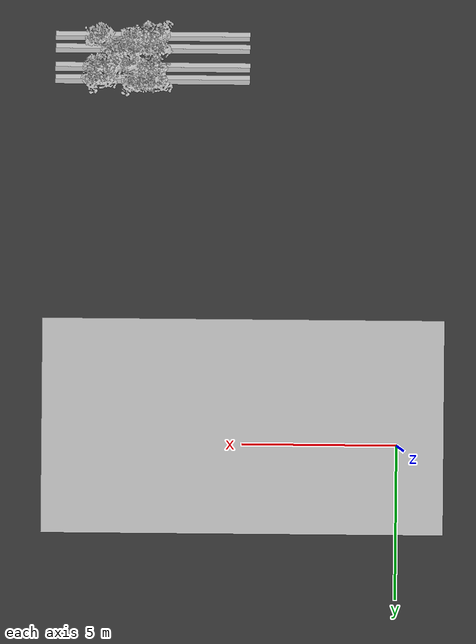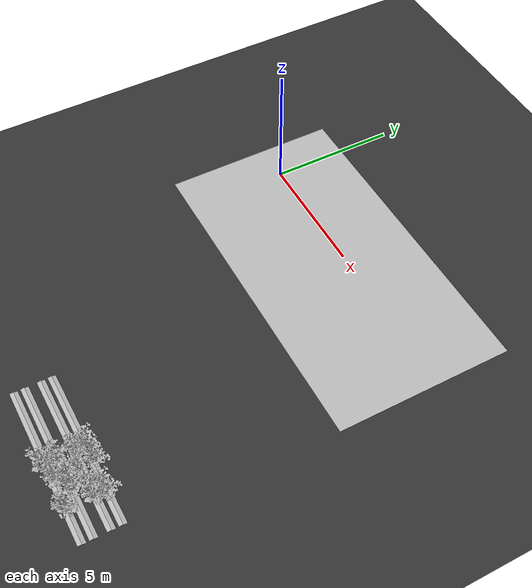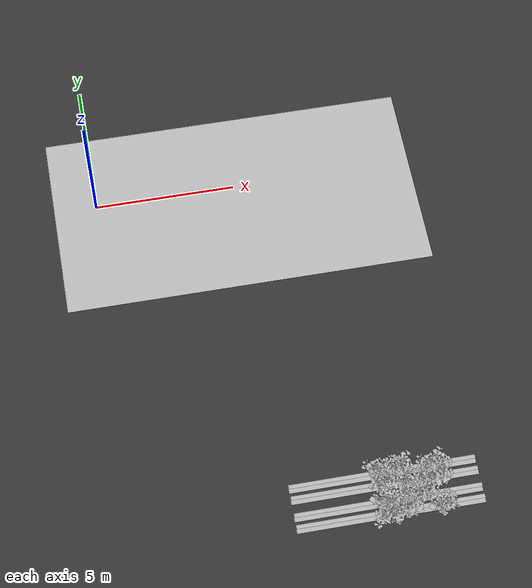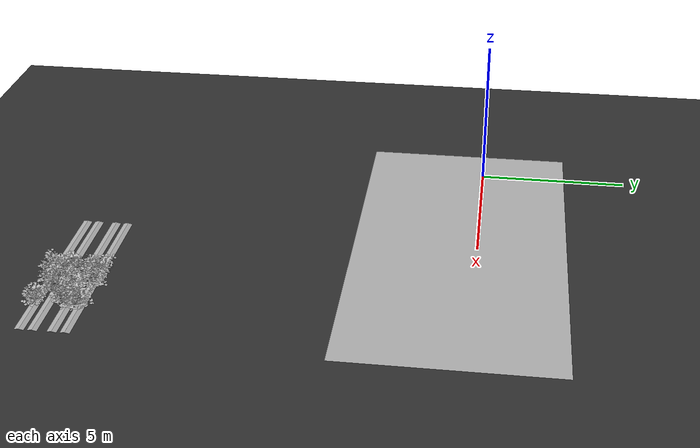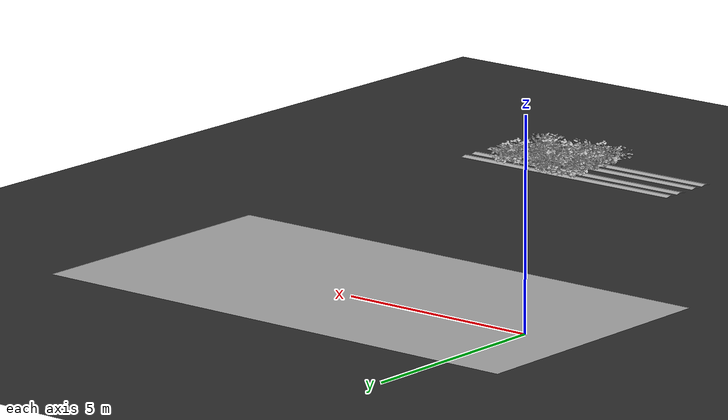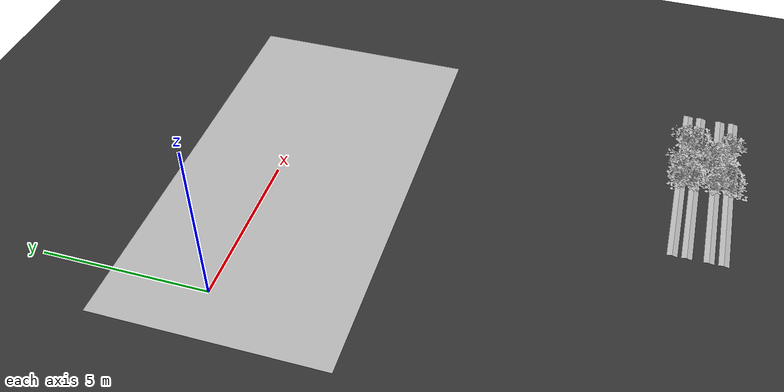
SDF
<sdf version="1.7">
 <world name="default">
  <model name="ground_plane">
   <static>1</static>
   <link name="link">
    <collision name="collision">
     <geometry><plane><normal>0 0 1</normal><size>100 100</size></plane></geometry>
     <surface>
      <contact><collide_bitmask>65535</collide_bitmask></contact>
      <friction><ode><mu>100</mu><mu2>50</mu2></ode></friction>
     </surface>
    </collision>
    <visual name="visual">
     <cast_shadows>0</cast_shadows>
     <geometry><plane><normal>0 0 1</normal><size>100 100</size></plane></geometry>
     <material>
      <ambient>0.2 0.2 0.2 1.0</ambient>
      <diffuse>0.2 0.2 0.2 1.0</diffuse>
      <specular>0.2 0.2 0.2 1.0</specular>
      <emissive>0.2 0.2 0.2 1.0</emissive>
     </material>
    </visual>
   </link>
  </model>
  <model name="ground">
   <pose>5 -0.5 0.01  3.141592654 0 0</pose>
   <static>true</static>
   <link name="body">
    <visual name="visual">
     <cast_shadows>0</cast_shadows>
     <geometry>
      <mesh><uri>file:///home/ifcosta/final_ws/src/cnn_line/worlds/models/ground.obj</uri></mesh>
     </geometry>
    </visual>
   </link>
  </model>
  <model name="plt_40026">
   <pose>7.75 -13.3 0.0115 0.0 0.0 1.6232</pose>
   <static>true</static>
   <link name="body">
    <visual name="visual">
     <geometry>
      <mesh><uri>file:///home/ifcosta/final_ws/src/cnn_line/worlds/models/plant37.obj</uri></mesh>
     </geometry>
    </visual>
   </link>
  </model>
  <model name="plt_40027">
   <pose>8.06 -13.3 0.0198 0.0 0.0 -0.42559</pose>
   <static>true</static>
   <link name="body">
    <visual name="visual">
     <geometry>
      <mesh><uri>file:///home/ifcosta/final_ws/src/cnn_line/worlds/models/plant37.obj</uri></mesh>
     </geometry>
    </visual>
   </link>
  </model>
  <model name="plt_40028">
   <pose>8.4 -13.2 0.0158 0.0 0.0 0.23405</pose>
   <static>true</static>
   <link name="body">
    <visual name="visual">
     <geometry>
      <mesh><uri>file:///home/ifcosta/final_ws/src/cnn_line/worlds/models/plant37.obj</uri></mesh>
     </geometry>
    </visual>
   </link>
  </model>
  <model name="plt_40029">
   <pose>8.66 -13.2 0.0158 0.0 0.0 0.44361</pose>
   <static>true</static>
   <link name="body">
    <visual name="visual">
     <geometry>
      <mesh><uri>file:///home/ifcosta/final_ws/src/cnn_line/worlds/models/plant37.obj</uri></mesh>
     </geometry>
    </visual>
   </link>
  </model>
  <model name="plt_40032">
   <pose>9.61 -13.2 0.014 0.0 0.0 -2.0054</pose>
   <static>true</static>
   <link name="body">
    <visual name="visual">
     <geometry>
      <mesh><uri>file:///home/ifcosta/final_ws/src/cnn_line/worlds/models/plant37.obj</uri></mesh>
     </geometry>
    </visual>
   </link>
  </model>
  <model name="plt_40033">
   <pose>9.89 -13.2 0.014 0.0 0.0 1.7439</pose>
   <static>true</static>
   <link name="body">
    <visual name="visual">
     <geometry>
      <mesh><uri>file:///home/ifcosta/final_ws/src/cnn_line/worlds/models/plant37.obj</uri></mesh>
     </geometry>
    </visual>
   </link>
  </model>
  <model name="slope_1634">
   <pose>8.0 -13.2 -0.005 0.0 0.0 0.0</pose>
   <static>true</static>
   <link name="body">
    <visual name="visual">
     <geometry>
      <mesh><uri>file:///home/ifcosta/final_ws/src/cnn_line/worlds/models/slope.obj</uri></mesh>
     </geometry>
    </visual>
   </link>
  </model>
  <model name="slope_1734">
   <pose>8.0 -13.2 -0.005 0.0 0.0 3.1416</pose>
   <static>true</static>
   <link name="body">
    <visual name="visual">
     <geometry>
      <mesh><uri>file:///home/ifcosta/final_ws/src/cnn_line/worlds/models/slope.obj</uri></mesh>
     </geometry>
    </visual>
   </link>
  </model>
  <model name="plt_40060">
   <pose>7.77 -12.7 0.014 0.0 0.0 -2.2603</pose>
   <static>true</static>
   <link name="body">
    <visual name="visual">
     <geometry>
      <mesh><uri>file:///home/ifcosta/final_ws/src/cnn_line/worlds/models/plant37.obj</uri></mesh>
     </geometry>
    </visual>
   </link>
  </model>
  <model name="plt_40061">
   <pose>8.11 -12.8 0.0173 0.0 0.0 -2.2937</pose>
   <static>true</static>
   <link name="body">
    <visual name="visual">
     <geometry>
      <mesh><uri>file:///home/ifcosta/final_ws/src/cnn_line/worlds/models/plant37.obj</uri></mesh>
     </geometry>
    </visual>
   </link>
  </model>
  <model name="plt_40063">
   <pose>8.62 -12.7 0.0153 0.0 0.0 -0.35887</pose>
   <static>true</static>
   <link name="body">
    <visual name="visual">
     <geometry>
      <mesh><uri>file:///home/ifcosta/final_ws/src/cnn_line/worlds/models/plant37.obj</uri></mesh>
     </geometry>
    </visual>
   </link>
  </model>
  <model name="plt_40064">
   <pose>9.0 -12.8 0.0196 0.0 0.0 -1.013</pose>
   <static>true</static>
   <link name="body">
    <visual name="visual">
     <geometry>
      <mesh><uri>file:///home/ifcosta/final_ws/src/cnn_line/worlds/models/plant37.obj</uri></mesh>
     </geometry>
    </visual>
   </link>
  </model>
  <model name="plt_40065">
   <pose>9.31 -12.7 0.0123 0.0 0.0 -0.51901</pose>
   <static>true</static>
   <link name="body">
    <visual name="visual">
     <geometry>
      <mesh><uri>file:///home/ifcosta/final_ws/src/cnn_line/worlds/models/plant37.obj</uri></mesh>
     </geometry>
    </visual>
   </link>
  </model>
  <model name="slope_1668">
   <pose>8.0 -12.8 -0.005 0.0 0.0 0.0</pose>
   <static>true</static>
   <link name="body">
    <visual name="visual">
     <geometry>
      <mesh><uri>file:///home/ifcosta/final_ws/src/cnn_line/worlds/models/slope.obj</uri></mesh>
     </geometry>
    </visual>
   </link>
  </model>
  <model name="slope_1768">
   <pose>8.0 -12.8 -0.005 0.0 0.0 3.1416</pose>
   <static>true</static>
   <link name="body">
    <visual name="visual">
     <geometry>
      <mesh><uri>file:///home/ifcosta/final_ws/src/cnn_line/worlds/models/slope.obj</uri></mesh>
     </geometry>
    </visual>
   </link>
  </model>
  <model name="plt_40094">
   <pose>7.8 -12.2 0.015 0.0 0.0 -0.44054</pose>
   <static>true</static>
   <link name="body">
    <visual name="visual">
     <geometry>
      <mesh><uri>file:///home/ifcosta/final_ws/src/cnn_line/worlds/models/plant37.obj</uri></mesh>
     </geometry>
    </visual>
   </link>
  </model>
  <model name="plt_40095">
   <pose>8.09 -12.2 0.0172 0.0 0.0 0.21421</pose>
   <static>true</static>
   <link name="body">
    <visual name="visual">
     <geometry>
      <mesh><uri>file:///home/ifcosta/final_ws/src/cnn_line/worlds/models/plant37.obj</uri></mesh>
     </geometry>
    </visual>
   </link>
  </model>
  <model name="plt_40097">
   <pose>8.71 -12.3 0.0126 0.0 0.0 0.72401</pose>
   <static>true</static>
   <link name="body">
    <visual name="visual">
     <geometry>
      <mesh><uri>file:///home/ifcosta/final_ws/src/cnn_line/worlds/models/plant37.obj</uri></mesh>
     </geometry>
    </visual>
   </link>
  </model>
  <model name="plt_40099">
   <pose>9.27 -12.2 0.0146 0.0 0.0 1.3255</pose>
   <static>true</static>
   <link name="body">
    <visual name="visual">
     <geometry>
      <mesh><uri>file:///home/ifcosta/final_ws/src/cnn_line/worlds/models/plant37.obj</uri></mesh>
     </geometry>
    </visual>
   </link>
  </model>
  <model name="plt_40100">
   <pose>9.55 -12.3 0.0164 0.0 0.0 -0.0056098</pose>
   <static>true</static>
   <link name="body">
    <visual name="visual">
     <geometry>
      <mesh><uri>file:///home/ifcosta/final_ws/src/cnn_line/worlds/models/plant37.obj</uri></mesh>
     </geometry>
    </visual>
   </link>
  </model>
  <model name="plt_40101">
   <pose>9.87 -12.2 0.0153 0.0 0.0 -0.41771</pose>
   <static>true</static>
   <link name="body">
    <visual name="visual">
     <geometry>
      <mesh><uri>file:///home/ifcosta/final_ws/src/cnn_line/worlds/models/plant37.obj</uri></mesh>
     </geometry>
    </visual>
   </link>
  </model>
  <model name="slope_1702">
   <pose>8.0 -12.2 -0.005 0.0 0.0 0.0</pose>
   <static>true</static>
   <link name="body">
    <visual name="visual">
     <geometry>
      <mesh><uri>file:///home/ifcosta/final_ws/src/cnn_line/worlds/models/slope.obj</uri></mesh>
     </geometry>
    </visual>
   </link>
  </model>
  <model name="slope_1802">
   <pose>8.0 -12.2 -0.005 0.0 0.0 3.1416</pose>
   <static>true</static>
   <link name="body">
    <visual name="visual">
     <geometry>
      <mesh><uri>file:///home/ifcosta/final_ws/src/cnn_line/worlds/models/slope.obj</uri></mesh>
     </geometry>
    </visual>
   </link>
  </model>
  <model name="plt_40128">
   <pose>7.8 -11.7 0.0154 0.0 0.0 0.32425</pose>
   <static>true</static>
   <link name="body">
    <visual name="visual">
     <geometry>
      <mesh><uri>file:///home/ifcosta/final_ws/src/cnn_line/worlds/models/plant37.obj</uri></mesh>
     </geometry>
    </visual>
   </link>
  </model>
  <model name="plt_40129">
   <pose>8.08 -11.7 0.0173 0.0 0.0 -1.9434</pose>
   <static>true</static>
   <link name="body">
    <visual name="visual">
     <geometry>
      <mesh><uri>file:///home/ifcosta/final_ws/src/cnn_line/worlds/models/plant37.obj</uri></mesh>
     </geometry>
    </visual>
   </link>
  </model>
  <model name="plt_40130">
   <pose>8.39 -11.7 0.0108 0.0 0.0 1.7171</pose>
   <static>true</static>
   <link name="body">
    <visual name="visual">
     <geometry>
      <mesh><uri>file:///home/ifcosta/final_ws/src/cnn_line/worlds/models/plant37.obj</uri></mesh>
     </geometry>
    </visual>
   </link>
  </model>
  <model name="plt_40131">
   <pose>8.68 -11.7 0.0159 0.0 0.0 -1.2196</pose>
   <static>true</static>
   <link name="body">
    <visual name="visual">
     <geometry>
      <mesh><uri>file:///home/ifcosta/final_ws/src/cnn_line/worlds/models/plant37.obj</uri></mesh>
     </geometry>
    </visual>
   </link>
  </model>
  <model name="plt_40134">
   <pose>9.6 -11.8 0.0186 0.0 0.0 0.3531</pose>
   <static>true</static>
   <link name="body">
    <visual name="visual">
     <geometry>
      <mesh><uri>file:///home/ifcosta/final_ws/src/cnn_line/worlds/models/plant37.obj</uri></mesh>
     </geometry>
    </visual>
   </link>
  </model>
  <model name="plt_40135">
   <pose>9.93 -11.8 0.0165 0.0 0.0 -0.70203</pose>
   <static>true</static>
   <link name="body">
    <visual name="visual">
     <geometry>
      <mesh><uri>file:///home/ifcosta/final_ws/src/cnn_line/worlds/models/plant37.obj</uri></mesh>
     </geometry>
    </visual>
   </link>
  </model>
  <model name="slope_1736">
   <pose>8.0 -11.8 -0.005 0.0 0.0 0.0</pose>
   <static>true</static>
   <link name="body">
    <visual name="visual">
     <geometry>
      <mesh><uri>file:///home/ifcosta/final_ws/src/cnn_line/worlds/models/slope.obj</uri></mesh>
     </geometry>
    </visual>
   </link>
  </model>
  <model name="slope_1836">
   <pose>8.0 -11.8 -0.005 0.0 0.0 3.1416</pose>
   <static>true</static>
   <link name="body">
    <visual name="visual">
     <geometry>
      <mesh><uri>file:///home/ifcosta/final_ws/src/cnn_line/worlds/models/slope.obj</uri></mesh>
     </geometry>
    </visual>
   </link>
  </model>
 </world>
</sdf>
